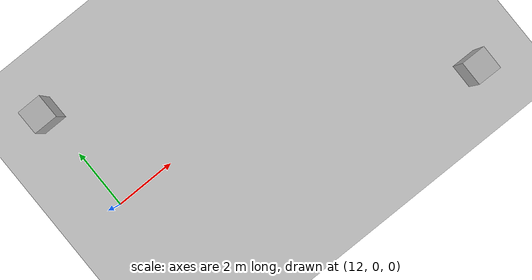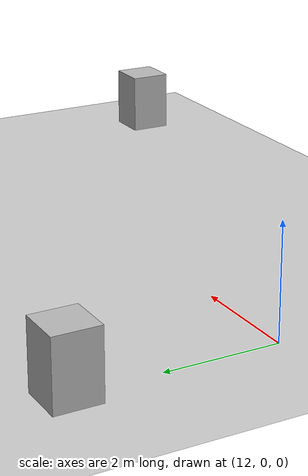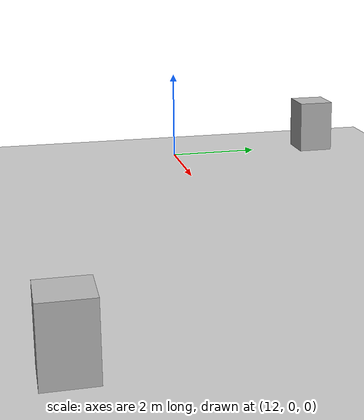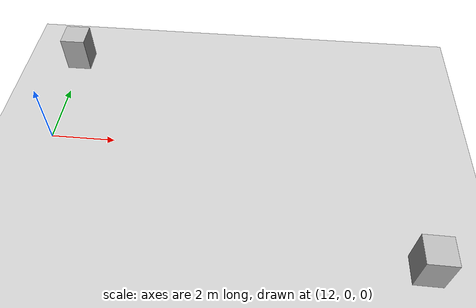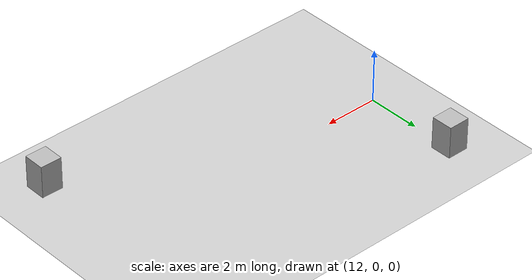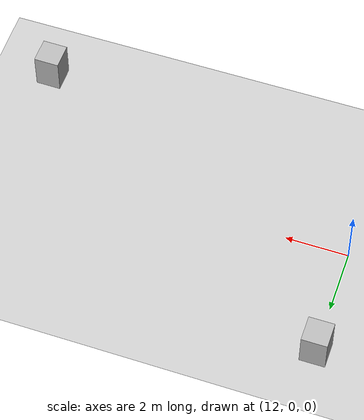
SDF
<?xml version="1.0"?>
<sdf version="1.6">
  <world name="v2-04g-r5-cruise-s5123">
    <gravity>0 0 -9.81</gravity>
    <physics name="v2_deterministic" type="ode">
      <max_step_size>0.002</max_step_size>
      <real_time_update_rate>500</real_time_update_rate>
    </physics>
    <include>
      <uri>model://sun</uri>
    </include>
    <include>
      <uri>model://ground_plane</uri>
    </include>
    <model name="cruise-left">
      <static>true</static>
      <pose>11.989048989 3.542369257 0.600000000 0 0 0.006319171</pose>
      <link name="link">
        <collision name="collision">
          <geometry>
            <box>
              <size>0.800000 0.800000 1.200000</size>
            </box>
          </geometry>
        </collision>
        <visual name="visual">
          <geometry>
            <box>
              <size>0.800000 0.800000 1.200000</size>
            </box>
          </geometry>
        </visual>
      </link>
    </model>
    <model name="cruise-right">
      <static>true</static>
      <pose>23.023556568 -3.552442523 0.600000000 0 0 -0.008451220</pose>
      <link name="link">
        <collision name="collision">
          <geometry>
            <box>
              <size>0.800000 0.800000 1.200000</size>
            </box>
          </geometry>
        </collision>
        <visual name="visual">
          <geometry>
            <box>
              <size>0.800000 0.800000 1.200000</size>
            </box>
          </geometry>
        </visual>
      </link>
    </model>
  </world>
</sdf>
